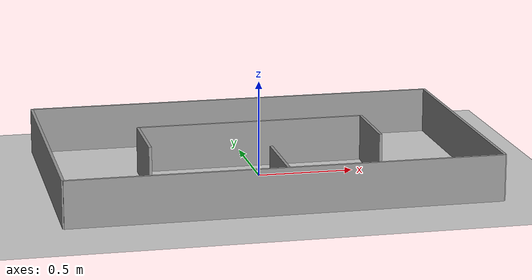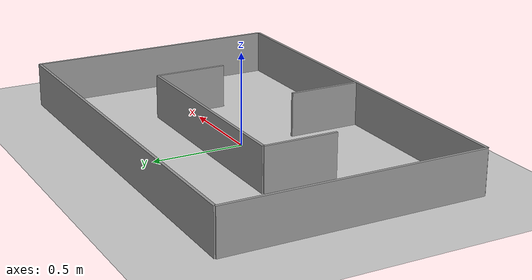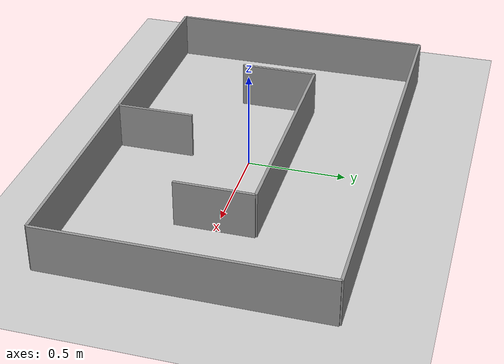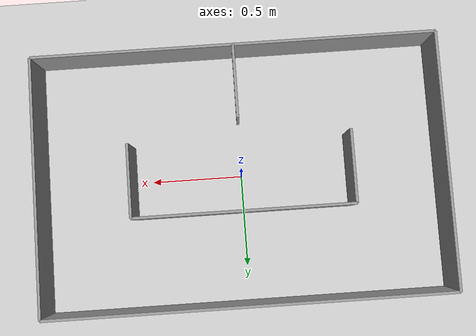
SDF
<?xml version="1.0" ?>
<sdf version='1.6'>
  <world name='default'>
    <light name='sun' type='directional'>
      <cast_shadows>1</cast_shadows>
      <pose frame=''>0 0 10 0 -0 0</pose>
      <diffuse>0.8 0.8 0.8 1</diffuse>
      <specular>0.2 0.2 0.2 1</specular>
      <attenuation>
        <range>1000</range>
        <constant>0.9</constant>
        <linear>0.01</linear>
        <quadratic>0.001</quadratic>
      </attenuation>
      <direction>-0.5 0.1 -0.9</direction>
    </light>
    <include><uri>model://maze</uri></include>
    <model name='ground_plane'>
      <static>1</static>
      <link name='link'>
        <collision name='collision'>
          <geometry>
            <plane>
              <normal>0 0 1</normal>
              <size>200 200</size>
            </plane>
          </geometry>
          <surface>
            <friction>
              <ode>
                <mu>100</mu>
                <mu2>50</mu2>
              </ode>
              <torsional>
                <ode/>
              </torsional>
            </friction>
            <contact>
              <ode/>
            </contact>
            <bounce/>
          </surface>
          <max_contacts>10</max_contacts>
        </collision>
        <visual name='visual'>
          <cast_shadows>0</cast_shadows>
          <geometry>
            <plane>
              <normal>0 0 1</normal>
              <size>200 200</size>
            </plane>
          </geometry>
          <material>
            <script>
              <uri>file://media/materials/scripts/gazebo.material</uri>
              <name>Gazebo/Grey</name>
            </script>
          </material>
        </visual>
        <self_collide>0</self_collide>
        <kinematic>0</kinematic>
      </link>
      <pose>0 100 0 0 0 0</pose>
    </model>
    <gravity>0 0 -9.8</gravity>
    <magnetic_field>6e-06 2.3e-05 -4.2e-05</magnetic_field>
    <atmosphere type='adiabatic'/>
    <physics name='default_physics' default='0' type='ode'>
      <max_step_size>0.001</max_step_size>
      <real_time_factor>1</real_time_factor>
      <real_time_update_rate>1000</real_time_update_rate>
    </physics>
    <scene>
      <ambient>0.4 0.4 0.4 1</ambient>
      <background>0.7 0.7 0.7 1</background>
      <shadows>1</shadows>
    </scene>
    <spherical_coordinates>
      <surface_model>EARTH_WGS84</surface_model>
      <latitude_deg>0</latitude_deg>
      <longitude_deg>0</longitude_deg>
      <elevation>0</elevation>
      <heading_deg>0</heading_deg>
    </spherical_coordinates>
    <gui fullscreen='0'>
      <camera name='user_camera'>
        <pose frame=''>2 -24 12 0 0.332 1.62</pose>
        <view_controller>orbit</view_controller>
        <projection_type>perspective</projection_type>
      </camera>
    </gui>
  </world>
</sdf>

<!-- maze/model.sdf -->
<sdf version='1.6'>
  <model name='maze'>
    <pose frame=''>0 0 0 0 -0 0</pose>
    <link name='Wall_0'>
      <collision name='Wall_0_Collision'>
        <geometry>
          <box>
            <size>1.4 0.015 0.24</size>
          </box>
        </geometry>
        <pose frame=''>0 0 0.12 0 -0 0</pose>
      </collision>
      <visual name='Wall_0_Visual'>
        <pose frame=''>0 0 0.12 0 -0 0</pose>
        <geometry>
          <box>
            <size>1.4 0.015 0.24</size>
          </box>
        </geometry>
        <material>
          <script>
            <uri>file://media/materials/scripts/gazebo.material</uri>
            <name>Gazebo/Grey</name>
          </script>
          <ambient>1 1 1 1</ambient>
        </material>
        <meta>
          <layer>0</layer>
        </meta>
      </visual>
      <pose frame=''>-1.1 0.0 0 0 0 -1.5708</pose>
    </link>
    <link name='Wall_1'>
      <collision name='Wall_1_Collision'>
        <geometry>
          <box>
            <size>2.2 0.015 0.24</size>
          </box>
        </geometry>
        <pose frame=''>0 0 0.12 0 -0 0</pose>
      </collision>
      <visual name='Wall_1_Visual'>
        <pose frame=''>0 0 0.12 0 -0 0</pose>
        <geometry>
          <box>
            <size>2.2 0.015 0.24</size>
          </box>
        </geometry>
        <material>
          <script>
            <uri>file://media/materials/scripts/gazebo.material</uri>
            <name>Gazebo/Grey</name>
          </script>
          <ambient>1 1 1 1</ambient>
        </material>
        <meta>
          <layer>0</layer>
        </meta>
      </visual>
      <pose frame=''>0 -0.7 0 0 -0 0</pose>
    </link>
    <link name='Wall_2'>
      <collision name='Wall_2_Collision'>
        <geometry>
          <box>
            <size>1.4 0.015 0.24</size>
          </box>
        </geometry>
        <pose frame=''>0 0 0.12 0 -0 0</pose>
      </collision>
      <visual name='Wall_2_Visual'>
        <pose frame=''>0 0 0.12 0 -0 0</pose>
        <geometry>
          <box>
            <size>1.4 0.015 0.24</size>
          </box>
        </geometry>
        <material>
          <script>
            <uri>file://media/materials/scripts/gazebo.material</uri>
            <name>Gazebo/Grey</name>
          </script>
          <ambient>1 1 1 1</ambient>
        </material>
        <meta>
          <layer>0</layer>
        </meta>
      </visual>
      <pose frame=''>1.1 0.0 0 0 0 1.5708</pose>
    </link>
    <link name='Wall_3'>
      <collision name='Wall_3_Collision'>
        <geometry>
          <box>
            <size>2.2 0.015 0.24</size>
          </box>
        </geometry>
        <pose frame=''>0 0 0.12 0 -0 0</pose>
      </collision>
      <visual name='Wall_3_Visual'>
        <pose frame=''>0 0 0.12 0 -0 0</pose>
        <geometry>
          <box>
            <size>2.2 0.015 0.24</size>
          </box>
        </geometry>
        <material>
          <script>
            <uri>file://media/materials/scripts/gazebo.material</uri>
            <name>Gazebo/Grey</name>
          </script>
          <ambient>1 1 1 1</ambient>
        </material>
        <meta>
          <layer>0</layer>
        </meta>
      </visual>
      <pose frame=''>0 0.7 0 0 -0 3.14159</pose>
    </link>
    <link name='Wall_5'>
      <collision name='Wall_5_Collision'>
        <geometry>
          <box>
            <size>0.4 0.015 0.24</size>
          </box>
        </geometry>
        <pose frame=''>0 0 0.12 0 -0 0</pose>
      </collision>
      <visual name='Wall_5_Visual'>
        <pose frame=''>0 0 0.12 0 -0 0</pose>
        <geometry>
          <box>
            <size>0.4 0.015 0.24</size>
          </box>
        </geometry>
        <material>
          <script>
            <uri>file://media/materials/scripts/gazebo.material</uri>
            <name>Gazebo/Grey</name>
          </script>
          <ambient>1 1 1 1</ambient>
        </material>
        <meta>
          <layer>0</layer>
        </meta>
      </visual>
      <pose frame=''>-0.6 0.0 0 0 -0 1.5708</pose>
    </link>
    <link name='Wall_6'>
      <collision name='Wall_6_Collision'>
        <geometry>
          <box>
            <size>1.2 0.015 0.24</size>
          </box>
        </geometry>
        <pose frame=''>0 0 0.12 0 -0 0</pose>
      </collision>
      <visual name='Wall_6_Visual'>
        <pose frame=''>0 0 0.12 0 -0 0</pose>
        <geometry>
          <box>
            <size>1.2 0.015 0.24</size>
          </box>
        </geometry>
        <material>
          <script>
            <uri>file://media/materials/scripts/gazebo.material</uri>
            <name>Gazebo/Grey</name>
          </script>
          <ambient>1 1 1 1</ambient>
        </material>
        <meta>
          <layer>0</layer>
        </meta>
      </visual>
      <pose frame=''>0.0 0.2 0 0 -0 0</pose>
    </link>
    <link name='Wall_7'>
      <collision name='Wall_7_Collision'>
        <geometry>
          <box>
            <size>0.4 0.015 0.24</size>
          </box>
        </geometry>
        <pose frame=''>0 0 0.12 0 -0 0</pose>
      </collision>
      <visual name='Wall_7_Visual'>
        <pose frame=''>0 0 0.12 0 -0 0</pose>
        <geometry>
          <box>
            <size>0.4 0.015 0.24</size>
          </box>
        </geometry>
        <material>
          <script>
            <uri>file://media/materials/scripts/gazebo.material</uri>
            <name>Gazebo/Grey</name>
          </script>
          <ambient>1 1 1 1</ambient>
        </material>
        <meta>
          <layer>0</layer>
        </meta>
      </visual>
      <pose frame=''>0.6 0.0 0 0 0 -1.5708</pose>
    </link>
    <link name='Wall_9'>
      <collision name='Wall_9_Collision'>
        <geometry>
          <box>
            <size>0.4 0.015 0.24</size>
          </box>
        </geometry>
        <pose frame=''>0 0 0.12 0 -0 0</pose>
      </collision>
      <visual name='Wall_9_Visual'>
        <pose frame=''>0 0 0.12 0 -0 0</pose>
        <geometry>
          <box>
            <size>0.4 0.015 0.24</size>
          </box>
        </geometry>
        <material>
          <script>
            <uri>file://media/materials/scripts/gazebo.material</uri>
            <name>Gazebo/Grey</name>
          </script>
          <ambient>1 1 1 1</ambient>
        </material>
        <meta>
          <layer>0</layer>
        </meta>
      </visual>
      <pose frame=''>-0.0 -0.5 0 0 -0 1.5708</pose>
    </link>
    <static>1</static>
  </model>
</sdf>
